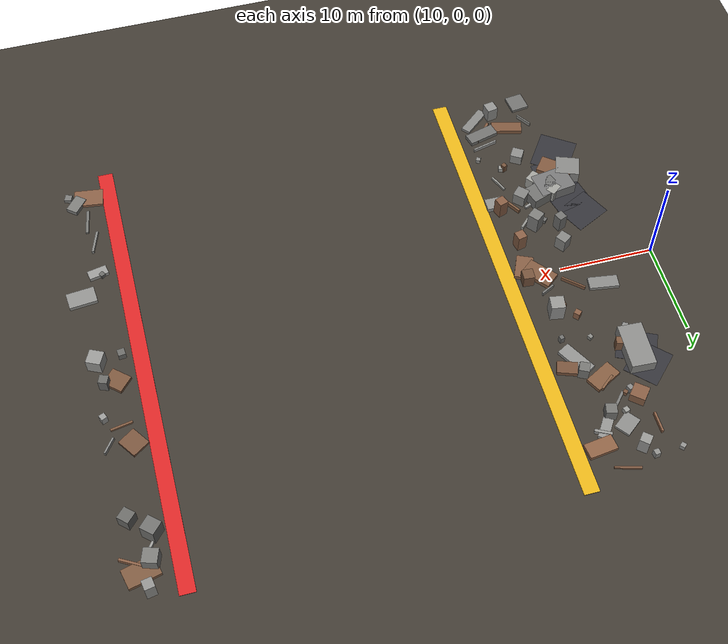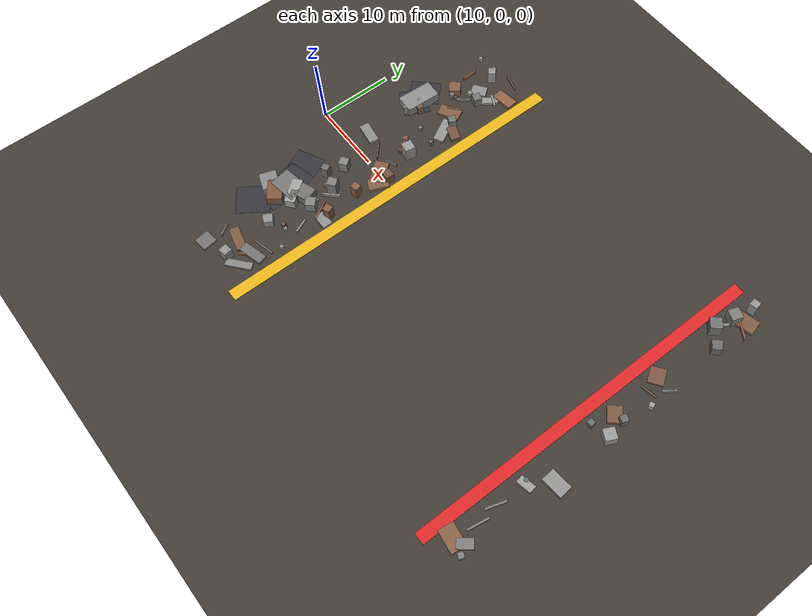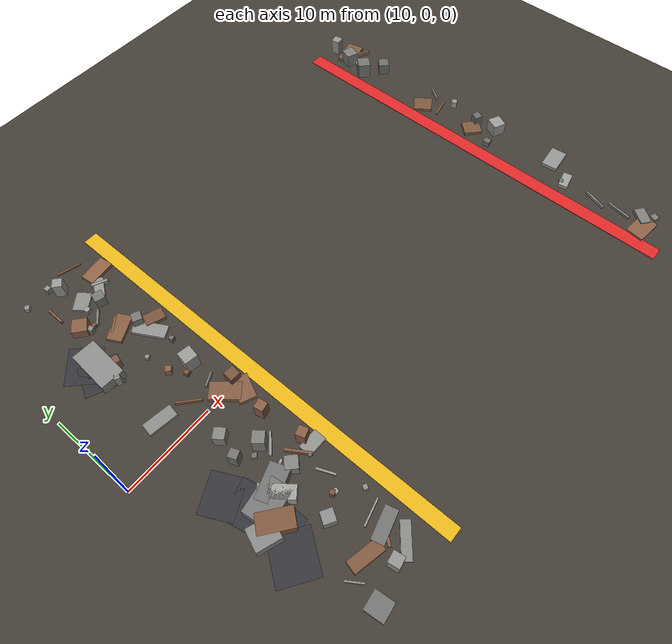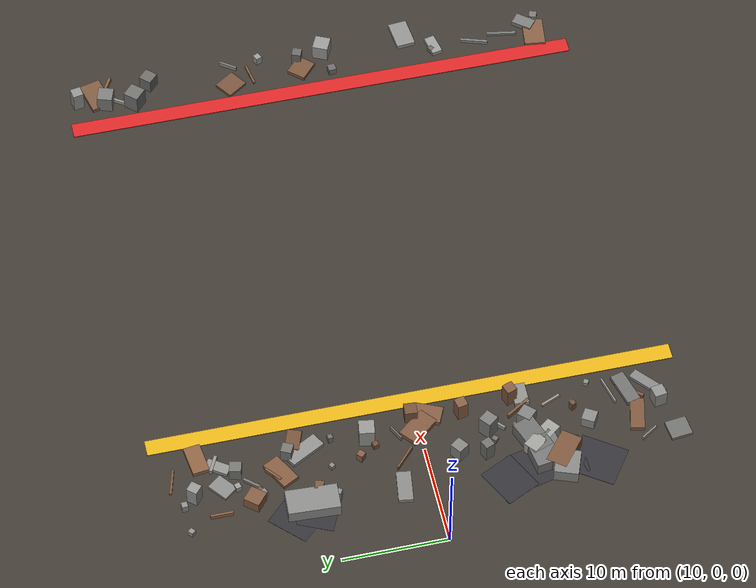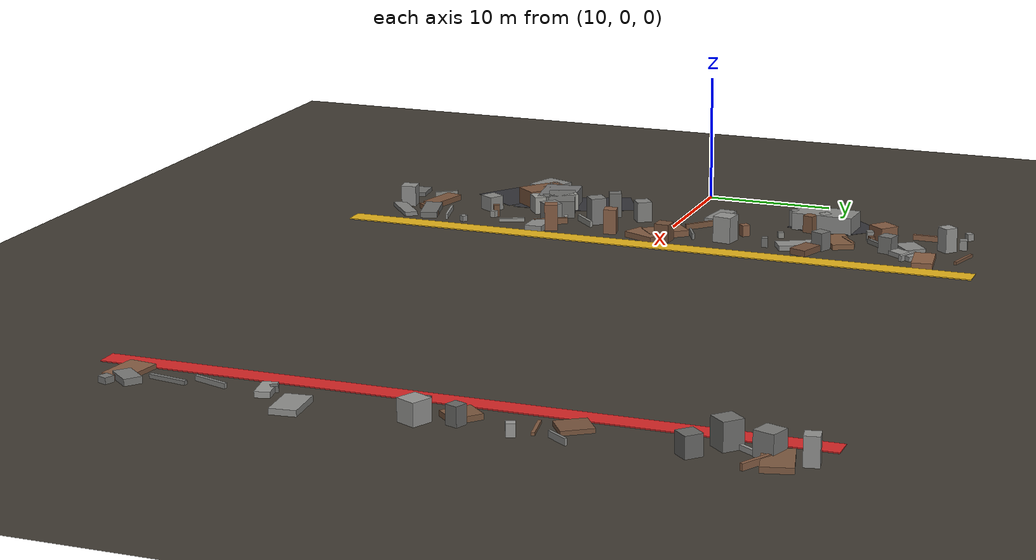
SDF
<sdf version="1.6">
 <world name="navitas_arena">
  <model name="ground_plane">
   <static>true</static>
   <link name="link">
    <collision name="collision">
     <geometry><plane><normal>0 0 1</normal><size>400 400</size></plane></geometry>
     <surface><friction><ode><mu>0.620</mu><mu2>0.620</mu2></ode></friction></surface>
    </collision>
    <visual name="visual">
     <cast_shadows>false</cast_shadows>
     <geometry><plane><normal>0 0 1</normal><size>400 400</size></plane></geometry>
     <material><ambient>0.250 0.230 0.200 1</ambient><diffuse>0.250 0.230 0.200 1</diffuse></material>
    </visual>
   </link>
  </model>
  <model name="brd_orta_E">
   <static>true</static>
   <pose>25.800 0.000 0.040 0 0 0.000</pose>
   <link name="link">
    <collision name="col"><geometry><box><size>1.600 50.000 0.080</size></box></geometry></collision>
    <visual name="vis">
     <geometry><box><size>1.600 50.000 0.080</size></box></geometry>
     <material><ambient>0.90 0.70 0.10 1</ambient><diffuse>0.90 0.70 0.10 1</diffuse></material>
    </visual>
   </link>
  </model>
  <model name="road_orta_3_4">
   <static>true</static>
   <pose>15.439 -15.241 0.040 0 0 0.961</pose>
   <link name="link">
    <collision name="col"><geometry><box><size>4.513 4.100 0.020</size></box></geometry></collision>
    <visual name="vis">
     <geometry><box><size>4.513 4.100 0.020</size></box></geometry>
     <material><ambient>0.20 0.20 0.22 1</ambient><diffuse>0.20 0.20 0.22 1</diffuse></material>
    </visual>
   </link>
  </model>
  <model name="road_orta_3_5">
   <static>true</static>
   <pose>16.440 -12.340 0.040 0 0 1.595</pose>
   <link name="link">
    <collision name="col"><geometry><box><size>3.741 4.100 0.020</size></box></geometry></collision>
    <visual name="vis">
     <geometry><box><size>3.741 4.100 0.020</size></box></geometry>
     <material><ambient>0.20 0.20 0.22 1</ambient><diffuse>0.20 0.20 0.22 1</diffuse></material>
    </visual>
   </link>
  </model>
  <model name="road_orta_3_6">
   <static>true</static>
   <pose>16.052 -9.460 0.040 0 0 1.808</pose>
   <link name="link">
    <collision name="col"><geometry><box><size>3.904 4.100 0.020</size></box></geometry></collision>
    <visual name="vis">
     <geometry><box><size>3.904 4.100 0.020</size></box></geometry>
     <material><ambient>0.20 0.20 0.22 1</ambient><diffuse>0.20 0.20 0.22 1</diffuse></material>
    </visual>
   </link>
  </model>
  <model name="road_orta_3_7">
   <static>true</static>
   <pose>15.127 -6.833 0.040 0 0 2.027</pose>
   <link name="link">
    <collision name="col"><geometry><box><size>3.499 4.100 0.020</size></box></geometry></collision>
    <visual name="vis">
     <geometry><box><size>3.499 4.100 0.020</size></box></geometry>
     <material><ambient>0.20 0.20 0.22 1</ambient><diffuse>0.20 0.20 0.22 1</diffuse></material>
    </visual>
   </link>
  </model>
  <model name="road_orta_3_14">
   <static>true</static>
   <pose>15.803 10.817 0.040 0 0 1.138</pose>
   <link name="link">
    <collision name="col"><geometry><box><size>3.458 4.100 0.020</size></box></geometry></collision>
    <visual name="vis">
     <geometry><box><size>3.458 4.100 0.020</size></box></geometry>
     <material><ambient>0.20 0.20 0.22 1</ambient><diffuse>0.20 0.20 0.22 1</diffuse></material>
    </visual>
   </link>
  </model>
  <model name="road_orta_3_15">
   <static>true</static>
   <pose>15.385 12.942 0.040 0 0 2.351</pose>
   <link name="link">
    <collision name="col"><geometry><box><size>3.614 4.100 0.020</size></box></geometry></collision>
    <visual name="vis">
     <geometry><box><size>3.614 4.100 0.020</size></box></geometry>
     <material><ambient>0.20 0.20 0.22 1</ambient><diffuse>0.20 0.20 0.22 1</diffuse></material>
    </visual>
   </link>
  </model>
  <model name="blk_orta_3_0_0">
   <static>true</static>
   <pose>17.294 -10.575 0.675 0 0 0.147</pose>
   <link name="link">
    <collision name="col"><geometry><box><size>3.985 2.896 1.350</size></box></geometry></collision>
    <visual name="vis">
     <geometry><box><size>3.985 2.896 1.350</size></box></geometry>
     <material><ambient>0.46 0.46 0.46 1</ambient><diffuse>0.46 0.46 0.46 1</diffuse></material>
    </visual>
   </link>
  </model>
  <model name="blk_orta_3_0_1">
   <static>true</static>
   <pose>18.818 -10.854 0.675 0 0 0.663</pose>
   <link name="link">
    <collision name="col"><geometry><box><size>0.965 0.965 1.350</size></box></geometry></collision>
    <visual name="vis">
     <geometry><box><size>0.965 0.965 1.350</size></box></geometry>
     <material><ambient>0.43 0.43 0.42 1</ambient><diffuse>0.43 0.43 0.42 1</diffuse></material>
    </visual>
   </link>
  </model>
  <model name="blk_orta_3_0_2">
   <static>true</static>
   <pose>16.498 -12.258 0.675 0 0 2.469</pose>
   <link name="link">
    <collision name="col"><geometry><box><size>3.567 2.004 1.350</size></box></geometry></collision>
    <visual name="vis">
     <geometry><box><size>3.567 2.004 1.350</size></box></geometry>
     <material><ambient>0.49 0.34 0.24 1</ambient><diffuse>0.49 0.34 0.24 1</diffuse></material>
    </visual>
   </link>
  </model>
  <model name="blk_orta_3_0_3">
   <static>true</static>
   <pose>18.376 -10.657 0.675 0 0 2.237</pose>
   <link name="link">
    <collision name="col"><geometry><box><size>3.619 1.404 1.350</size></box></geometry></collision>
    <visual name="vis">
     <geometry><box><size>3.619 1.404 1.350</size></box></geometry>
     <material><ambient>0.62 0.62 0.60 1</ambient><diffuse>0.62 0.62 0.60 1</diffuse></material>
    </visual>
   </link>
  </model>
  <model name="blk_orta_3_0_4">
   <static>true</static>
   <pose>18.682 -9.884 0.675 0 0 0.340</pose>
   <link name="link">
    <collision name="col"><geometry><box><size>3.652 2.089 1.350</size></box></geometry></collision>
    <visual name="vis">
     <geometry><box><size>3.652 2.089 1.350</size></box></geometry>
     <material><ambient>0.44 0.44 0.43 1</ambient><diffuse>0.44 0.44 0.43 1</diffuse></material>
    </visual>
   </link>
  </model>
  <model name="blk_orta_3_0_5">
   <static>true</static>
   <pose>15.060 -12.229 0.675 0 0 2.784</pose>
   <link name="link">
    <collision name="col"><geometry><box><size>2.578 2.278 1.350</size></box></geometry></collision>
    <visual name="vis">
     <geometry><box><size>2.578 2.278 1.350</size></box></geometry>
     <material><ambient>0.52 0.52 0.51 1</ambient><diffuse>0.52 0.52 0.51 1</diffuse></material>
    </visual>
   </link>
  </model>
  <model name="blk_orta_3_1_0">
   <static>true</static>
   <pose>16.704 11.388 0.675 0 0 2.353</pose>
   <link name="link">
    <collision name="col"><geometry><box><size>0.851 0.851 1.350</size></box></geometry></collision>
    <visual name="vis">
     <geometry><box><size>0.851 0.851 1.350</size></box></geometry>
     <material><ambient>0.55 0.55 0.54 1</ambient><diffuse>0.55 0.55 0.54 1</diffuse></material>
    </visual>
   </link>
  </model>
  <model name="blk_orta_3_1_1">
   <static>true</static>
   <pose>16.211 11.350 0.675 0 0 1.521</pose>
   <link name="link">
    <collision name="col"><geometry><box><size>4.831 2.549 1.350</size></box></geometry></collision>
    <visual name="vis">
     <geometry><box><size>4.831 2.549 1.350</size></box></geometry>
     <material><ambient>0.54 0.54 0.53 1</ambient><diffuse>0.54 0.54 0.53 1</diffuse></material>
    </visual>
   </link>
  </model>
  <model name="blk_orta_3_1_3">
   <static>true</static>
   <pose>16.527 8.871 0.675 0 0 1.044</pose>
   <link name="link">
    <collision name="col"><geometry><box><size>0.570 0.570 1.350</size></box></geometry></collision>
    <visual name="vis">
     <geometry><box><size>0.570 0.570 1.350</size></box></geometry>
     <material><ambient>0.54 0.54 0.53 1</ambient><diffuse>0.54 0.54 0.53 1</diffuse></material>
    </visual>
   </link>
  </model>
  <model name="blk_orta_3_1_5">
   <static>true</static>
   <pose>17.600 10.443 0.675 0 0 1.290</pose>
   <link name="link">
    <collision name="col"><geometry><box><size>0.833 0.833 1.350</size></box></geometry></collision>
    <visual name="vis">
     <geometry><box><size>0.833 0.833 1.350</size></box></geometry>
     <material><ambient>0.48 0.34 0.24 1</ambient><diffuse>0.48 0.34 0.24 1</diffuse></material>
    </visual>
   </link>
  </model>
  <model name="deb_orta_3">
   <static>true</static>
   <pose>19.423 -20.034 0.222 0 0 2.903</pose>
   <link name="link">
    <collision name="col"><geometry><box><size>3.354 1.308 0.444</size></box></geometry></collision>
    <visual name="vis">
     <geometry><box><size>3.354 1.308 0.444</size></box></geometry>
     <material><ambient>0.49 0.34 0.24 1</ambient><diffuse>0.49 0.34 0.24 1</diffuse></material>
    </visual>
   </link>
  </model>
  <model name="deb_orta_10">
   <static>true</static>
   <pose>19.405 2.032 0.227 0 0 2.404</pose>
   <link name="link">
    <collision name="col"><geometry><box><size>2.652 0.189 0.453</size></box></geometry></collision>
    <visual name="vis">
     <geometry><box><size>2.652 0.189 0.453</size></box></geometry>
     <material><ambient>0.48 0.34 0.24 1</ambient><diffuse>0.48 0.34 0.24 1</diffuse></material>
    </visual>
   </link>
  </model>
  <model name="deb_orta_12">
   <static>true</static>
   <pose>23.389 20.734 0.221 0 0 0.130</pose>
   <link name="link">
    <collision name="col"><geometry><box><size>2.953 1.582 0.442</size></box></geometry></collision>
    <visual name="vis">
     <geometry><box><size>2.953 1.582 0.442</size></box></geometry>
     <material><ambient>0.55 0.38 0.27 1</ambient><diffuse>0.55 0.38 0.27 1</diffuse></material>
    </visual>
   </link>
  </model>
  <model name="deb_orta_16">
   <static>true</static>
   <pose>22.945 8.285 0.368 0 0 0.208</pose>
   <link name="link">
    <collision name="col"><geometry><box><size>0.453 0.453 0.736</size></box></geometry></collision>
    <visual name="vis">
     <geometry><box><size>0.453 0.453 0.736</size></box></geometry>
     <material><ambient>0.43 0.43 0.42 1</ambient><diffuse>0.43 0.43 0.42 1</diffuse></material>
    </visual>
   </link>
  </model>
  <model name="deb_orta_17">
   <static>true</static>
   <pose>23.760 -8.899 1.014 0 0 0.332</pose>
   <link name="link">
    <collision name="col"><geometry><box><size>1.011 1.011 2.028</size></box></geometry></collision>
    <visual name="vis">
     <geometry><box><size>1.011 1.011 2.028</size></box></geometry>
     <material><ambient>0.52 0.36 0.26 1</ambient><diffuse>0.52 0.36 0.26 1</diffuse></material>
    </visual>
   </link>
  </model>
  <model name="deb_orta_20">
   <static>true</static>
   <pose>21.397 -6.914 0.233 0 0 0.776</pose>
   <link name="link">
    <collision name="col"><geometry><box><size>2.331 0.241 0.466</size></box></geometry></collision>
    <visual name="vis">
     <geometry><box><size>2.331 0.241 0.466</size></box></geometry>
     <material><ambient>0.57 0.57 0.55 1</ambient><diffuse>0.57 0.57 0.55 1</diffuse></material>
    </visual>
   </link>
  </model>
  <model name="deb_orta_21">
   <static>true</static>
   <pose>22.559 -18.094 0.200 0 0 0.235</pose>
   <link name="link">
    <collision name="col"><geometry><box><size>2.797 0.164 0.400</size></box></geometry></collision>
    <visual name="vis">
     <geometry><box><size>2.797 0.164 0.400</size></box></geometry>
     <material><ambient>0.59 0.59 0.58 1</ambient><diffuse>0.59 0.59 0.58 1</diffuse></material>
    </visual>
   </link>
  </model>
  <model name="deb_orta_22">
   <static>true</static>
   <pose>18.828 -2.980 0.801 0 0 0.622</pose>
   <link name="link">
    <collision name="col"><geometry><box><size>1.173 1.173 1.602</size></box></geometry></collision>
    <visual name="vis">
     <geometry><box><size>1.173 1.173 1.602</size></box></geometry>
     <material><ambient>0.51 0.51 0.50 1</ambient><diffuse>0.51 0.51 0.50 1</diffuse></material>
    </visual>
   </link>
  </model>
  <model name="deb_orta_25">
   <static>true</static>
   <pose>18.374 15.427 0.374 0 0 1.913</pose>
   <link name="link">
    <collision name="col"><geometry><box><size>0.536 0.536 0.748</size></box></geometry></collision>
    <visual name="vis">
     <geometry><box><size>0.536 0.536 0.748</size></box></geometry>
     <material><ambient>0.52 0.52 0.51 1</ambient><diffuse>0.52 0.52 0.51 1</diffuse></material>
    </visual>
   </link>
  </model>
  <model name="deb_orta_26">
   <static>true</static>
   <pose>22.136 12.487 0.705 0 0 1.118</pose>
   <link name="link">
    <collision name="col"><geometry><box><size>1.036 1.036 1.411</size></box></geometry></collision>
    <visual name="vis">
     <geometry><box><size>1.036 1.036 1.411</size></box></geometry>
     <material><ambient>0.45 0.45 0.44 1</ambient><diffuse>0.45 0.45 0.44 1</diffuse></material>
    </visual>
   </link>
  </model>
  <model name="deb_orta_30">
   <static>true</static>
   <pose>20.395 13.448 0.205 0 0 0.488</pose>
   <link name="link">
    <collision name="col"><geometry><box><size>3.038 1.692 0.410</size></box></geometry></collision>
    <visual name="vis">
     <geometry><box><size>3.038 1.692 0.410</size></box></geometry>
     <material><ambient>0.51 0.36 0.25 1</ambient><diffuse>0.51 0.36 0.25 1</diffuse></material>
    </visual>
   </link>
  </model>
  <model name="deb_orta_33">
   <static>true</static>
   <pose>19.605 17.610 0.291 0 0 0.268</pose>
   <link name="link">
    <collision name="col"><geometry><box><size>0.545 0.545 0.582</size></box></geometry></collision>
    <visual name="vis">
     <geometry><box><size>0.545 0.545 0.582</size></box></geometry>
     <material><ambient>0.60 0.60 0.58 1</ambient><diffuse>0.60 0.60 0.58 1</diffuse></material>
    </visual>
   </link>
  </model>
  <model name="deb_orta_39">
   <static>true</static>
   <pose>19.617 -6.553 0.214 0 0 2.374</pose>
   <link name="link">
    <collision name="col"><geometry><box><size>0.508 0.508 0.428</size></box></geometry></collision>
    <visual name="vis">
     <geometry><box><size>0.508 0.508 0.428</size></box></geometry>
     <material><ambient>0.42 0.42 0.41 1</ambient><diffuse>0.42 0.42 0.41 1</diffuse></material>
    </visual>
   </link>
  </model>
  <model name="deb_orta_45">
   <static>true</static>
   <pose>18.527 22.763 0.385 0 0 1.690</pose>
   <link name="link">
    <collision name="col"><geometry><box><size>0.567 0.567 0.771</size></box></geometry></collision>
    <visual name="vis">
     <geometry><box><size>0.567 0.567 0.771</size></box></geometry>
     <material><ambient>0.55 0.55 0.54 1</ambient><diffuse>0.55 0.55 0.54 1</diffuse></material>
    </visual>
   </link>
  </model>
  <model name="deb_orta_46">
   <static>true</static>
   <pose>17.188 -20.615 0.210 0 0 2.145</pose>
   <link name="link">
    <collision name="col"><geometry><box><size>1.858 0.160 0.421</size></box></geometry></collision>
    <visual name="vis">
     <geometry><box><size>1.858 0.160 0.421</size></box></geometry>
     <material><ambient>0.53 0.53 0.51 1</ambient><diffuse>0.53 0.53 0.51 1</diffuse></material>
    </visual>
   </link>
  </model>
  <model name="deb_orta_51">
   <static>true</static>
   <pose>22.499 -9.439 0.242 0 0 2.126</pose>
   <link name="link">
    <collision name="col"><geometry><box><size>2.688 0.251 0.484</size></box></geometry></collision>
    <visual name="vis">
     <geometry><box><size>2.688 0.251 0.484</size></box></geometry>
     <material><ambient>0.49 0.35 0.25 1</ambient><diffuse>0.49 0.35 0.25 1</diffuse></material>
    </visual>
   </link>
  </model>
  <model name="deb_orta_52">
   <static>true</static>
   <pose>23.900 0.475 0.704 0 0 1.498</pose>
   <link name="link">
    <collision name="col"><geometry><box><size>1.174 1.174 1.407</size></box></geometry></collision>
    <visual name="vis">
     <geometry><box><size>1.174 1.174 1.407</size></box></geometry>
     <material><ambient>0.45 0.32 0.23 1</ambient><diffuse>0.45 0.32 0.23 1</diffuse></material>
    </visual>
   </link>
  </model>
  <model name="deb_orta_53">
   <static>true</static>
   <pose>19.391 21.669 0.948 0 0 2.431</pose>
   <link name="link">
    <collision name="col"><geometry><box><size>1.040 1.040 1.895</size></box></geometry></collision>
    <visual name="vis">
     <geometry><box><size>1.040 1.040 1.895</size></box></geometry>
     <material><ambient>0.58 0.58 0.57 1</ambient><diffuse>0.58 0.58 0.57 1</diffuse></material>
    </visual>
   </link>
  </model>
  <model name="deb_orta_54">
   <static>true</static>
   <pose>21.581 -14.396 0.458 0 0 2.032</pose>
   <link name="link">
    <collision name="col"><geometry><box><size>0.480 0.480 0.915</size></box></geometry></collision>
    <visual name="vis">
     <geometry><box><size>0.480 0.480 0.915</size></box></geometry>
     <material><ambient>0.45 0.32 0.23 1</ambient><diffuse>0.45 0.32 0.23 1</diffuse></material>
    </visual>
   </link>
  </model>
  <model name="deb_orta_57">
   <static>true</static>
   <pose>20.637 -22.351 0.824 0 0 1.738</pose>
   <link name="link">
    <collision name="col"><geometry><box><size>1.180 1.180 1.648</size></box></geometry></collision>
    <visual name="vis">
     <geometry><box><size>1.180 1.180 1.648</size></box></geometry>
     <material><ambient>0.56 0.56 0.55 1</ambient><diffuse>0.56 0.56 0.55 1</diffuse></material>
    </visual>
   </link>
  </model>
  <model name="deb_orta_63">
   <static>true</static>
   <pose>20.156 -9.024 0.141 0 0 0.373</pose>
   <link name="link">
    <collision name="col"><geometry><box><size>1.768 0.261 0.283</size></box></geometry></collision>
    <visual name="vis">
     <geometry><box><size>1.768 0.261 0.283</size></box></geometry>
     <material><ambient>0.60 0.60 0.59 1</ambient><diffuse>0.60 0.60 0.59 1</diffuse></material>
    </visual>
   </link>
  </model>
  <model name="deb_orta_69">
   <static>true</static>
   <pose>20.810 -6.172 1.052 0 0 2.244</pose>
   <link name="link">
    <collision name="col"><geometry><box><size>1.252 1.252 2.104</size></box></geometry></collision>
    <visual name="vis">
     <geometry><box><size>1.252 1.252 2.104</size></box></geometry>
     <material><ambient>0.48 0.48 0.47 1</ambient><diffuse>0.48 0.48 0.47 1</diffuse></material>
    </visual>
   </link>
  </model>
  <model name="deb_orta_70">
   <static>true</static>
   <pose>16.365 2.752 0.196 0 0 2.999</pose>
   <link name="link">
    <collision name="col"><geometry><box><size>3.112 1.372 0.392</size></box></geometry></collision>
    <visual name="vis">
     <geometry><box><size>3.112 1.372 0.392</size></box></geometry>
     <material><ambient>0.53 0.53 0.52 1</ambient><diffuse>0.53 0.53 0.52 1</diffuse></material>
    </visual>
   </link>
  </model>
  <model name="deb_orta_75">
   <static>true</static>
   <pose>17.090 -23.352 0.160 0 0 0.115</pose>
   <link name="link">
    <collision name="col"><geometry><box><size>1.953 2.053 0.319</size></box></geometry></collision>
    <visual name="vis">
     <geometry><box><size>1.953 2.053 0.319</size></box></geometry>
     <material><ambient>0.44 0.44 0.43 1</ambient><diffuse>0.44 0.44 0.43 1</diffuse></material>
    </visual>
   </link>
  </model>
  <model name="deb_orta_76">
   <static>true</static>
   <pose>22.414 0.077 0.243 0 0 2.259</pose>
   <link name="link">
    <collision name="col"><geometry><box><size>3.232 1.901 0.486</size></box></geometry></collision>
    <visual name="vis">
     <geometry><box><size>3.232 1.901 0.486</size></box></geometry>
     <material><ambient>0.50 0.35 0.25 1</ambient><diffuse>0.50 0.35 0.25 1</diffuse></material>
    </visual>
   </link>
  </model>
  <model name="deb_orta_79">
   <static>true</static>
   <pose>23.740 -1.100 0.229 0 0 1.149</pose>
   <link name="link">
    <collision name="col"><geometry><box><size>2.716 1.776 0.458</size></box></geometry></collision>
    <visual name="vis">
     <geometry><box><size>2.716 1.776 0.458</size></box></geometry>
     <material><ambient>0.51 0.36 0.26 1</ambient><diffuse>0.51 0.36 0.26 1</diffuse></material>
    </visual>
   </link>
  </model>
  <model name="deb_orta_80">
   <static>true</static>
   <pose>22.233 2.198 0.245 0 0 0.457</pose>
   <link name="link">
    <collision name="col"><geometry><box><size>1.568 0.181 0.490</size></box></geometry></collision>
    <visual name="vis">
     <geometry><box><size>1.568 0.181 0.490</size></box></geometry>
     <material><ambient>0.48 0.48 0.47 1</ambient><diffuse>0.48 0.48 0.47 1</diffuse></material>
    </visual>
   </link>
  </model>
  <model name="deb_orta_81">
   <static>true</static>
   <pose>23.204 -4.152 0.975 0 0 0.207</pose>
   <link name="link">
    <collision name="col"><geometry><box><size>1.003 1.003 1.949</size></box></geometry></collision>
    <visual name="vis">
     <geometry><box><size>1.003 1.003 1.949</size></box></geometry>
     <material><ambient>0.53 0.37 0.27 1</ambient><diffuse>0.53 0.37 0.27 1</diffuse></material>
    </visual>
   </link>
  </model>
  <model name="deb_orta_83">
   <static>true</static>
   <pose>21.590 23.379 0.117 0 0 2.871</pose>
   <link name="link">
    <collision name="col"><geometry><box><size>2.652 0.224 0.235</size></box></geometry></collision>
    <visual name="vis">
     <geometry><box><size>2.652 0.224 0.235</size></box></geometry>
     <material><ambient>0.47 0.33 0.24 1</ambient><diffuse>0.47 0.33 0.24 1</diffuse></material>
    </visual>
   </link>
  </model>
  <model name="deb_orta_96">
   <static>true</static>
   <pose>20.006 8.733 0.226 0 0 0.499</pose>
   <link name="link">
    <collision name="col"><geometry><box><size>0.430 0.430 0.452</size></box></geometry></collision>
    <visual name="vis">
     <geometry><box><size>0.430 0.430 0.452</size></box></geometry>
     <material><ambient>0.53 0.53 0.51 1</ambient><diffuse>0.53 0.53 0.51 1</diffuse></material>
    </visual>
   </link>
  </model>
  <model name="deb_orta_101">
   <static>true</static>
   <pose>22.762 -12.615 0.138 0 0 1.970</pose>
   <link name="link">
    <collision name="col"><geometry><box><size>2.031 0.210 0.275</size></box></geometry></collision>
    <visual name="vis">
     <geometry><box><size>2.031 0.210 0.275</size></box></geometry>
     <material><ambient>0.59 0.59 0.57 1</ambient><diffuse>0.59 0.59 0.57 1</diffuse></material>
    </visual>
   </link>
  </model>
  <model name="deb_orta_106">
   <static>true</static>
   <pose>21.365 4.368 0.296 0 0 0.262</pose>
   <link name="link">
    <collision name="col"><geometry><box><size>0.517 0.517 0.592</size></box></geometry></collision>
    <visual name="vis">
     <geometry><box><size>0.517 0.517 0.592</size></box></geometry>
     <material><ambient>0.46 0.32 0.23 1</ambient><diffuse>0.46 0.32 0.23 1</diffuse></material>
    </visual>
   </link>
  </model>
  <model name="deb_orta_108">
   <static>true</static>
   <pose>21.927 -14.481 0.259 0 0 1.357</pose>
   <link name="link">
    <collision name="col"><geometry><box><size>0.446 0.446 0.518</size></box></geometry></collision>
    <visual name="vis">
     <geometry><box><size>0.446 0.446 0.518</size></box></geometry>
     <material><ambient>0.62 0.62 0.60 1</ambient><diffuse>0.62 0.62 0.60 1</diffuse></material>
    </visual>
   </link>
  </model>
  <model name="deb_orta_111">
   <static>true</static>
   <pose>21.136 -9.896 0.699 0 0 2.365</pose>
   <link name="link">
    <collision name="col"><geometry><box><size>1.330 1.330 1.397</size></box></geometry></collision>
    <visual name="vis">
     <geometry><box><size>1.330 1.330 1.397</size></box></geometry>
     <material><ambient>0.50 0.50 0.49 1</ambient><diffuse>0.50 0.50 0.49 1</diffuse></material>
    </visual>
   </link>
  </model>
  <model name="deb_orta_121">
   <static>true</static>
   <pose>17.023 19.602 0.213 0 0 1.571</pose>
   <link name="link">
    <collision name="col"><geometry><box><size>2.117 0.220 0.426</size></box></geometry></collision>
    <visual name="vis">
     <geometry><box><size>2.117 0.220 0.426</size></box></geometry>
     <material><ambient>0.53 0.37 0.27 1</ambient><diffuse>0.53 0.37 0.27 1</diffuse></material>
    </visual>
   </link>
  </model>
  <model name="deb_orta_124">
   <static>true</static>
   <pose>20.380 5.919 0.435 0 0 0.767</pose>
   <link name="link">
    <collision name="col"><geometry><box><size>0.636 0.636 0.870</size></box></geometry></collision>
    <visual name="vis">
     <geometry><box><size>0.636 0.636 0.870</size></box></geometry>
     <material><ambient>0.53 0.37 0.27 1</ambient><diffuse>0.53 0.37 0.27 1</diffuse></material>
    </visual>
   </link>
  </model>
  <model name="deb_orta_126">
   <static>true</static>
   <pose>18.918 15.670 0.238 0 0 2.366</pose>
   <link name="link">
    <collision name="col"><geometry><box><size>0.405 0.405 0.476</size></box></geometry></collision>
    <visual name="vis">
     <geometry><box><size>0.405 0.405 0.476</size></box></geometry>
     <material><ambient>0.46 0.32 0.23 1</ambient><diffuse>0.46 0.32 0.23 1</diffuse></material>
    </visual>
   </link>
  </model>
  <model name="deb_orta_129">
   <static>true</static>
   <pose>19.708 -15.525 0.572 0 0 1.020</pose>
   <link name="link">
    <collision name="col"><geometry><box><size>1.253 1.253 1.144</size></box></geometry></collision>
    <visual name="vis">
     <geometry><box><size>1.253 1.253 1.144</size></box></geometry>
     <material><ambient>0.54 0.54 0.53 1</ambient><diffuse>0.54 0.54 0.53 1</diffuse></material>
    </visual>
   </link>
  </model>
  <model name="deb_orta_130">
   <static>true</static>
   <pose>22.205 18.956 0.184 0 0 0.978</pose>
   <link name="link">
    <collision name="col"><geometry><box><size>2.264 1.044 0.368</size></box></geometry></collision>
    <visual name="vis">
     <geometry><box><size>2.264 1.044 0.368</size></box></geometry>
     <material><ambient>0.57 0.57 0.56 1</ambient><diffuse>0.57 0.57 0.56 1</diffuse></material>
    </visual>
   </link>
  </model>
  <model name="deb_orta_131">
   <static>true</static>
   <pose>20.248 14.176 0.221 0 0 0.679</pose>
   <link name="link">
    <collision name="col"><geometry><box><size>1.835 0.239 0.442</size></box></geometry></collision>
    <visual name="vis">
     <geometry><box><size>1.835 0.239 0.442</size></box></geometry>
     <material><ambient>0.52 0.37 0.26 1</ambient><diffuse>0.52 0.37 0.26 1</diffuse></material>
    </visual>
   </link>
  </model>
  <model name="deb_orta_132">
   <static>true</static>
   <pose>19.943 18.950 0.143 0 0 0.661</pose>
   <link name="link">
    <collision name="col"><geometry><box><size>2.117 1.619 0.286</size></box></geometry></collision>
    <visual name="vis">
     <geometry><box><size>2.117 1.619 0.286</size></box></geometry>
     <material><ambient>0.54 0.54 0.53 1</ambient><diffuse>0.54 0.54 0.53 1</diffuse></material>
    </visual>
   </link>
  </model>
  <model name="deb_orta_134">
   <static>true</static>
   <pose>23.910 -16.299 0.228 0 0 1.045</pose>
   <link name="link">
    <collision name="col"><geometry><box><size>0.459 0.459 0.457</size></box></geometry></collision>
    <visual name="vis">
     <geometry><box><size>0.459 0.459 0.457</size></box></geometry>
     <material><ambient>0.54 0.54 0.53 1</ambient><diffuse>0.54 0.54 0.53 1</diffuse></material>
    </visual>
   </link>
  </model>
  <model name="deb_orta_148">
   <static>true</static>
   <pose>17.805 16.353 0.564 0 0 2.442</pose>
   <link name="link">
    <collision name="col"><geometry><box><size>1.569 1.569 1.129</size></box></geometry></collision>
    <visual name="vis">
     <geometry><box><size>1.569 1.569 1.129</size></box></geometry>
     <material><ambient>0.52 0.36 0.26 1</ambient><diffuse>0.52 0.36 0.26 1</diffuse></material>
    </visual>
   </link>
  </model>
  <model name="deb_orta_152">
   <static>true</static>
   <pose>23.514 11.638 0.241 0 0 2.797</pose>
   <link name="link">
    <collision name="col"><geometry><box><size>2.111 1.349 0.482</size></box></geometry></collision>
    <visual name="vis">
     <geometry><box><size>2.111 1.349 0.482</size></box></geometry>
     <material><ambient>0.46 0.32 0.23 1</ambient><diffuse>0.46 0.32 0.23 1</diffuse></material>
    </visual>
   </link>
  </model>
  <model name="deb_orta_157">
   <static>true</static>
   <pose>15.743 22.638 0.272 0 0 2.329</pose>
   <link name="link">
    <collision name="col"><geometry><box><size>0.495 0.495 0.545</size></box></geometry></collision>
    <visual name="vis">
     <geometry><box><size>0.495 0.495 0.545</size></box></geometry>
     <material><ambient>0.56 0.56 0.55 1</ambient><diffuse>0.56 0.56 0.55 1</diffuse></material>
    </visual>
   </link>
  </model>
  <model name="deb_orta_160">
   <static>true</static>
   <pose>19.767 16.217 0.171 0 0 0.843</pose>
   <link name="link">
    <collision name="col"><geometry><box><size>1.866 0.260 0.341</size></box></geometry></collision>
    <visual name="vis">
     <geometry><box><size>1.866 0.260 0.341</size></box></geometry>
     <material><ambient>0.47 0.47 0.46 1</ambient><diffuse>0.47 0.47 0.46 1</diffuse></material>
    </visual>
   </link>
  </model>
  <model name="deb_orta_162">
   <static>true</static>
   <pose>22.455 -19.698 0.225 0 0 0.256</pose>
   <link name="link">
    <collision name="col"><geometry><box><size>3.330 1.340 0.450</size></box></geometry></collision>
    <visual name="vis">
     <geometry><box><size>3.330 1.340 0.450</size></box></geometry>
     <material><ambient>0.44 0.44 0.43 1</ambient><diffuse>0.44 0.44 0.43 1</diffuse></material>
    </visual>
   </link>
  </model>
  <model name="deb_orta_163">
   <static>true</static>
   <pose>22.580 19.318 0.223 0 0 2.677</pose>
   <link name="link">
    <collision name="col"><geometry><box><size>1.746 0.295 0.446</size></box></geometry></collision>
    <visual name="vis">
     <geometry><box><size>1.746 0.295 0.446</size></box></geometry>
     <material><ambient>0.58 0.58 0.57 1</ambient><diffuse>0.58 0.58 0.57 1</diffuse></material>
    </visual>
   </link>
  </model>
  <model name="deb_orta_169">
   <static>true</static>
   <pose>22.634 -21.915 0.164 0 0 0.696</pose>
   <link name="link">
    <collision name="col"><geometry><box><size>3.510 1.005 0.327</size></box></geometry></collision>
    <visual name="vis">
     <geometry><box><size>3.510 1.005 0.327</size></box></geometry>
     <material><ambient>0.52 0.52 0.51 1</ambient><diffuse>0.52 0.52 0.51 1</diffuse></material>
    </visual>
   </link>
  </model>
  <model name="deb_orta_181">
   <static>true</static>
   <pose>23.937 -9.935 0.238 0 0 3.128</pose>
   <link name="link">
    <collision name="col"><geometry><box><size>2.196 1.394 0.476</size></box></geometry></collision>
    <visual name="vis">
     <geometry><box><size>2.196 1.394 0.476</size></box></geometry>
     <material><ambient>0.55 0.55 0.54 1</ambient><diffuse>0.55 0.55 0.54 1</diffuse></material>
    </visual>
   </link>
  </model>
  <model name="deb_orta_185">
   <static>true</static>
   <pose>21.234 17.501 0.657 0 0 2.889</pose>
   <link name="link">
    <collision name="col"><geometry><box><size>1.114 1.114 1.315</size></box></geometry></collision>
    <visual name="vis">
     <geometry><box><size>1.114 1.114 1.315</size></box></geometry>
     <material><ambient>0.45 0.45 0.44 1</ambient><diffuse>0.45 0.45 0.44 1</diffuse></material>
    </visual>
   </link>
  </model>
  <model name="deb_orta_188">
   <static>true</static>
   <pose>16.990 -23.305 0.134 0 0 0.148</pose>
   <link name="link">
    <collision name="col"><geometry><box><size>1.608 0.255 0.268</size></box></geometry></collision>
    <visual name="vis">
     <geometry><box><size>1.608 0.255 0.268</size></box></geometry>
     <material><ambient>0.49 0.34 0.24 1</ambient><diffuse>0.49 0.34 0.24 1</diffuse></material>
    </visual>
   </link>
  </model>
  <model name="deb_orta_195">
   <static>true</static>
   <pose>22.243 -20.018 0.193 0 0 0.858</pose>
   <link name="link">
    <collision name="col"><geometry><box><size>2.965 0.285 0.386</size></box></geometry></collision>
    <visual name="vis">
     <geometry><box><size>2.965 0.285 0.386</size></box></geometry>
     <material><ambient>0.50 0.35 0.25 1</ambient><diffuse>0.50 0.35 0.25 1</diffuse></material>
    </visual>
   </link>
  </model>
  <model name="deb_orta_198">
   <static>true</static>
   <pose>22.289 10.888 0.196 0 0 2.071</pose>
   <link name="link">
    <collision name="col"><geometry><box><size>3.596 1.448 0.392</size></box></geometry></collision>
    <visual name="vis">
     <geometry><box><size>3.596 1.448 0.392</size></box></geometry>
     <material><ambient>0.56 0.56 0.55 1</ambient><diffuse>0.56 0.56 0.55 1</diffuse></material>
    </visual>
   </link>
  </model>
  <model name="deb_orta_203">
   <static>true</static>
   <pose>22.372 4.962 1.019 0 0 1.414</pose>
   <link name="link">
    <collision name="col"><geometry><box><size>1.454 1.454 2.038</size></box></geometry></collision>
    <visual name="vis">
     <geometry><box><size>1.454 1.454 2.038</size></box></geometry>
     <material><ambient>0.58 0.58 0.57 1</ambient><diffuse>0.58 0.58 0.57 1</diffuse></material>
    </visual>
   </link>
  </model>
  <model name="deb_orta_225">
   <static>true</static>
   <pose>18.281 -5.485 0.962 0 0 0.394</pose>
   <link name="link">
    <collision name="col"><geometry><box><size>0.931 0.931 1.924</size></box></geometry></collision>
    <visual name="vis">
     <geometry><box><size>0.931 0.931 1.924</size></box></geometry>
     <material><ambient>0.44 0.44 0.43 1</ambient><diffuse>0.44 0.44 0.43 1</diffuse></material>
    </visual>
   </link>
  </model>
  <model name="brd_zor_W">
   <static>true</static>
   <pose>64.200 0.000 0.040 0 0 0.000</pose>
   <link name="link">
    <collision name="col"><geometry><box><size>1.600 50.000 0.080</size></box></geometry></collision>
    <visual name="vis">
     <geometry><box><size>1.600 50.000 0.080</size></box></geometry>
     <material><ambient>0.85 0.15 0.15 1</ambient><diffuse>0.85 0.15 0.15 1</diffuse></material>
    </visual>
   </link>
  </model>
  <model name="deb_zor_7">
   <static>true</static>
   <pose>68.932 -9.115 0.213 0 0 0.097</pose>
   <link name="link">
    <collision name="col"><geometry><box><size>2.941 1.844 0.425</size></box></geometry></collision>
    <visual name="vis">
     <geometry><box><size>2.941 1.844 0.425</size></box></geometry>
     <material><ambient>0.56 0.56 0.55 1</ambient><diffuse>0.56 0.56 0.55 1</diffuse></material>
    </visual>
   </link>
  </model>
  <model name="deb_zor_13">
   <static>true</static>
   <pose>66.971 -18.866 0.142 0 0 1.400</pose>
   <link name="link">
    <collision name="col"><geometry><box><size>2.872 0.299 0.285</size></box></geometry></collision>
    <visual name="vis">
     <geometry><box><size>2.872 0.299 0.285</size></box></geometry>
     <material><ambient>0.45 0.45 0.44 1</ambient><diffuse>0.45 0.45 0.44 1</diffuse></material>
    </visual>
   </link>
  </model>
  <model name="deb_zor_18">
   <static>true</static>
   <pose>66.464 -11.536 0.217 0 0 0.632</pose>
   <link name="link">
    <collision name="col"><geometry><box><size>0.506 0.506 0.434</size></box></geometry></collision>
    <visual name="vis">
     <geometry><box><size>0.506 0.506 0.434</size></box></geometry>
     <material><ambient>0.41 0.41 0.40 1</ambient><diffuse>0.41 0.41 0.40 1</diffuse></material>
    </visual>
   </link>
  </model>
  <model name="deb_zor_43">
   <static>true</static>
   <pose>68.154 1.716 0.683 0 0 2.771</pose>
   <link name="link">
    <collision name="col"><geometry><box><size>0.924 0.924 1.366</size></box></geometry></collision>
    <visual name="vis">
     <geometry><box><size>0.924 0.924 1.366</size></box></geometry>
     <material><ambient>0.41 0.41 0.40 1</ambient><diffuse>0.41 0.41 0.40 1</diffuse></material>
    </visual>
   </link>
  </model>
  <model name="deb_zor_50">
   <static>true</static>
   <pose>68.568 -0.885 0.789 0 0 1.125</pose>
   <link name="link">
    <collision name="col"><geometry><box><size>1.528 1.528 1.578</size></box></geometry></collision>
    <visual name="vis">
     <geometry><box><size>1.528 1.528 1.578</size></box></geometry>
     <material><ambient>0.59 0.59 0.58 1</ambient><diffuse>0.59 0.59 0.58 1</diffuse></material>
    </visual>
   </link>
  </model>
  <model name="deb_zor_55">
   <static>true</static>
   <pose>66.914 1.546 0.200 0 0 0.841</pose>
   <link name="link">
    <collision name="col"><geometry><box><size>1.879 2.173 0.401</size></box></geometry></collision>
    <visual name="vis">
     <geometry><box><size>1.879 2.173 0.401</size></box></geometry>
     <material><ambient>0.48 0.34 0.24 1</ambient><diffuse>0.48 0.34 0.24 1</diffuse></material>
    </visual>
   </link>
  </model>
  <model name="deb_zor_121">
   <static>true</static>
   <pose>67.273 6.629 0.114 0 0 0.183</pose>
   <link name="link">
    <collision name="col"><geometry><box><size>2.280 0.223 0.228</size></box></geometry></collision>
    <visual name="vis">
     <geometry><box><size>2.280 0.223 0.228</size></box></geometry>
     <material><ambient>0.50 0.35 0.25 1</ambient><diffuse>0.50 0.35 0.25 1</diffuse></material>
    </visual>
   </link>
  </model>
  <model name="deb_zor_150">
   <static>true</static>
   <pose>66.862 -11.868 0.213 0 0 0.197</pose>
   <link name="link">
    <collision name="col"><geometry><box><size>2.048 1.053 0.425</size></box></geometry></collision>
    <visual name="vis">
     <geometry><box><size>2.048 1.053 0.425</size></box></geometry>
     <material><ambient>0.60 0.60 0.59 1</ambient><diffuse>0.60 0.60 0.59 1</diffuse></material>
    </visual>
   </link>
  </model>
  <model name="deb_zor_171">
   <static>true</static>
   <pose>68.762 8.562 0.231 0 0 0.945</pose>
   <link name="link">
    <collision name="col"><geometry><box><size>1.798 0.178 0.462</size></box></geometry></collision>
    <visual name="vis">
     <geometry><box><size>1.798 0.178 0.462</size></box></geometry>
     <material><ambient>0.54 0.54 0.53 1</ambient><diffuse>0.54 0.54 0.53 1</diffuse></material>
    </visual>
   </link>
  </model>
  <model name="deb_zor_173">
   <static>true</static>
   <pose>66.003 -1.359 0.357 0 0 0.103</pose>
   <link name="link">
    <collision name="col"><geometry><box><size>0.768 0.768 0.714</size></box></geometry></collision>
    <visual name="vis">
     <geometry><box><size>0.768 0.768 0.714</size></box></geometry>
     <material><ambient>0.41 0.41 0.40 1</ambient><diffuse>0.41 0.41 0.40 1</diffuse></material>
    </visual>
   </link>
  </model>
  <model name="deb_zor_177">
   <static>true</static>
   <pose>66.425 8.744 0.155 0 0 2.169</pose>
   <link name="link">
    <collision name="col"><geometry><box><size>2.220 1.996 0.310</size></box></geometry></collision>
    <visual name="vis">
     <geometry><box><size>2.220 1.996 0.310</size></box></geometry>
     <material><ambient>0.47 0.33 0.24 1</ambient><diffuse>0.47 0.33 0.24 1</diffuse></material>
    </visual>
   </link>
  </model>
  <model name="deb_zor_191">
   <static>true</static>
   <pose>66.667 19.786 0.181 0 0 0.990</pose>
   <link name="link">
    <collision name="col"><geometry><box><size>1.603 0.237 0.362</size></box></geometry></collision>
    <visual name="vis">
     <geometry><box><size>1.603 0.237 0.362</size></box></geometry>
     <material><ambient>0.61 0.61 0.60 1</ambient><diffuse>0.61 0.61 0.60 1</diffuse></material>
    </visual>
   </link>
  </model>
  <model name="deb_zor_193">
   <static>true</static>
   <pose>66.208 18.398 0.968 0 0 0.834</pose>
   <link name="link">
    <collision name="col"><geometry><box><size>1.506 1.506 1.937</size></box></geometry></collision>
    <visual name="vis">
     <geometry><box><size>1.506 1.506 1.937</size></box></geometry>
     <material><ambient>0.44 0.44 0.43 1</ambient><diffuse>0.44 0.44 0.43 1</diffuse></material>
    </visual>
   </link>
  </model>
  <model name="deb_zor_199">
   <static>true</static>
   <pose>66.569 -15.987 0.179 0 0 1.254</pose>
   <link name="link">
    <collision name="col"><geometry><box><size>2.687 0.242 0.357</size></box></geometry></collision>
    <visual name="vis">
     <geometry><box><size>2.687 0.242 0.357</size></box></geometry>
     <material><ambient>0.51 0.51 0.50 1</ambient><diffuse>0.51 0.51 0.50 1</diffuse></material>
    </visual>
   </link>
  </model>
  <model name="deb_zor_206">
   <static>true</static>
   <pose>67.879 21.995 0.202 0 0 0.239</pose>
   <link name="link">
    <collision name="col"><geometry><box><size>3.271 2.064 0.405</size></box></geometry></collision>
    <visual name="vis">
     <geometry><box><size>3.271 2.064 0.405</size></box></geometry>
     <material><ambient>0.49 0.35 0.25 1</ambient><diffuse>0.49 0.35 0.25 1</diffuse></material>
    </visual>
   </link>
  </model>
  <model name="deb_zor_227">
   <static>true</static>
   <pose>68.836 5.559 0.439 0 0 1.977</pose>
   <link name="link">
    <collision name="col"><geometry><box><size>0.625 0.625 0.878</size></box></geometry></collision>
    <visual name="vis">
     <geometry><box><size>0.625 0.625 0.878</size></box></geometry>
     <material><ambient>0.60 0.60 0.59 1</ambient><diffuse>0.60 0.60 0.59 1</diffuse></material>
    </visual>
   </link>
  </model>
  <model name="deb_zor_247">
   <static>true</static>
   <pose>67.359 23.922 0.983 0 0 0.179</pose>
   <link name="link">
    <collision name="col"><geometry><box><size>1.027 1.027 1.965</size></box></geometry></collision>
    <visual name="vis">
     <geometry><box><size>1.027 1.027 1.965</size></box></geometry>
     <material><ambient>0.57 0.57 0.56 1</ambient><diffuse>0.57 0.57 0.56 1</diffuse></material>
    </visual>
   </link>
  </model>
  <model name="deb_zor_248">
   <static>true</static>
   <pose>68.527 20.927 0.231 0 0 2.629</pose>
   <link name="link">
    <collision name="col"><geometry><box><size>2.624 0.247 0.462</size></box></geometry></collision>
    <visual name="vis">
     <geometry><box><size>2.624 0.247 0.462</size></box></geometry>
     <material><ambient>0.53 0.37 0.27 1</ambient><diffuse>0.53 0.37 0.27 1</diffuse></material>
    </visual>
   </link>
  </model>
  <model name="deb_zor_249">
   <static>true</static>
   <pose>66.402 -22.043 0.164 0 0 3.011</pose>
   <link name="link">
    <collision name="col"><geometry><box><size>3.074 2.050 0.328</size></box></geometry></collision>
    <visual name="vis">
     <geometry><box><size>3.074 2.050 0.328</size></box></geometry>
     <material><ambient>0.53 0.37 0.27 1</ambient><diffuse>0.53 0.37 0.27 1</diffuse></material>
    </visual>
   </link>
  </model>
  <model name="deb_zor_251">
   <static>true</static>
   <pose>66.761 21.201 0.852 0 0 1.251</pose>
   <link name="link">
    <collision name="col"><geometry><box><size>1.488 1.488 1.704</size></box></geometry></collision>
    <visual name="vis">
     <geometry><box><size>1.488 1.488 1.704</size></box></geometry>
     <material><ambient>0.48 0.48 0.47 1</ambient><diffuse>0.48 0.48 0.47 1</diffuse></material>
    </visual>
   </link>
  </model>
  <model name="deb_zor_254">
   <static>true</static>
   <pose>67.789 -21.370 0.242 0 0 0.890</pose>
   <link name="link">
    <collision name="col"><geometry><box><size>2.016 1.253 0.484</size></box></geometry></collision>
    <visual name="vis">
     <geometry><box><size>2.016 1.253 0.484</size></box></geometry>
     <material><ambient>0.48 0.48 0.47 1</ambient><diffuse>0.48 0.48 0.47 1</diffuse></material>
    </visual>
   </link>
  </model>
  <model name="deb_zor_259">
   <static>true</static>
   <pose>68.513 -22.499 0.225 0 0 1.212</pose>
   <link name="link">
    <collision name="col"><geometry><box><size>0.746 0.746 0.449</size></box></geometry></collision>
    <visual name="vis">
     <geometry><box><size>0.746 0.746 0.449</size></box></geometry>
     <material><ambient>0.47 0.47 0.46 1</ambient><diffuse>0.47 0.47 0.46 1</diffuse></material>
    </visual>
   </link>
  </model>
  <model name="chic_zor_6">
   <static>true</static>
   <pose>68.254 16.655 0.739 0 0 2.387</pose>
   <link name="link">
    <collision name="col"><geometry><box><size>1.277 1.277 1.477</size></box></geometry></collision>
    <visual name="vis">
     <geometry><box><size>1.277 1.277 1.477</size></box></geometry>
     <material><ambient>0.41 0.41 0.40 1</ambient><diffuse>0.41 0.41 0.40 1</diffuse></material>
    </visual>
   </link>
  </model>
 </world>
</sdf>
